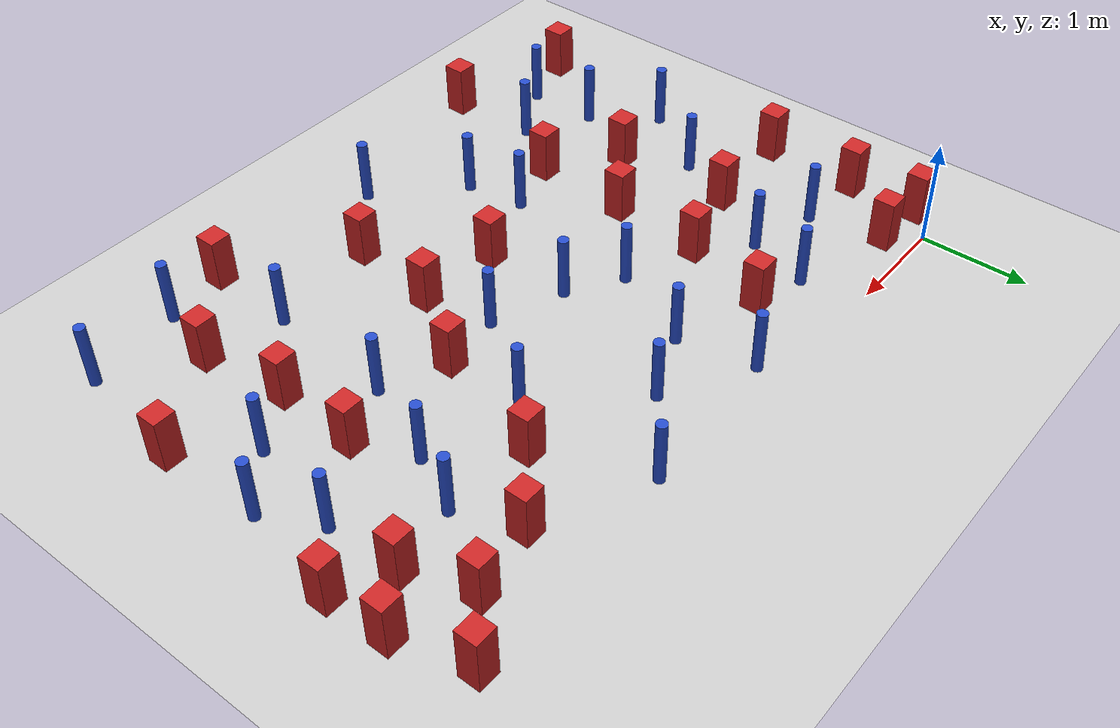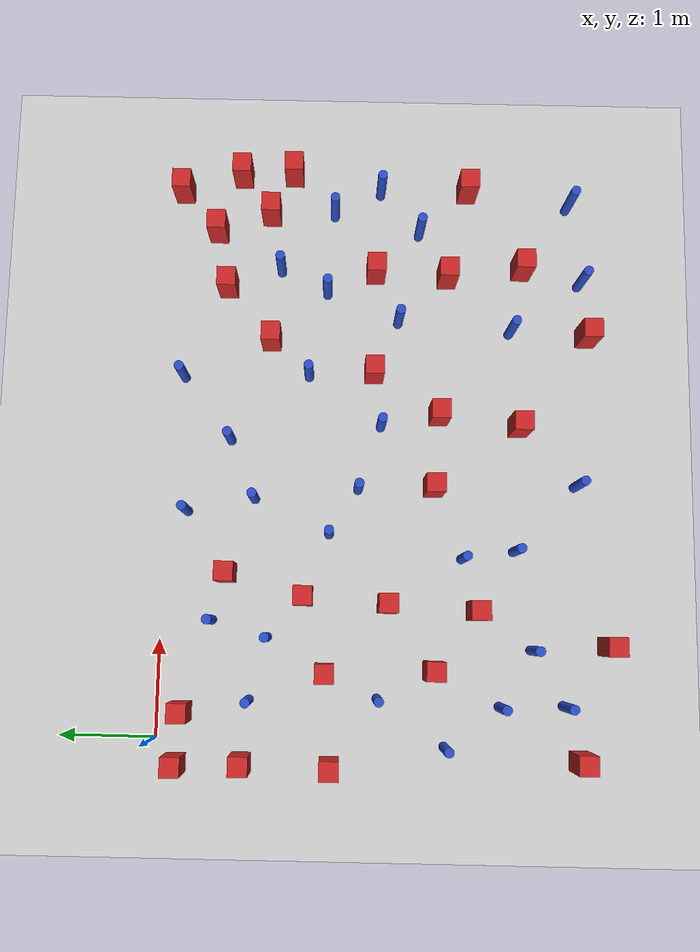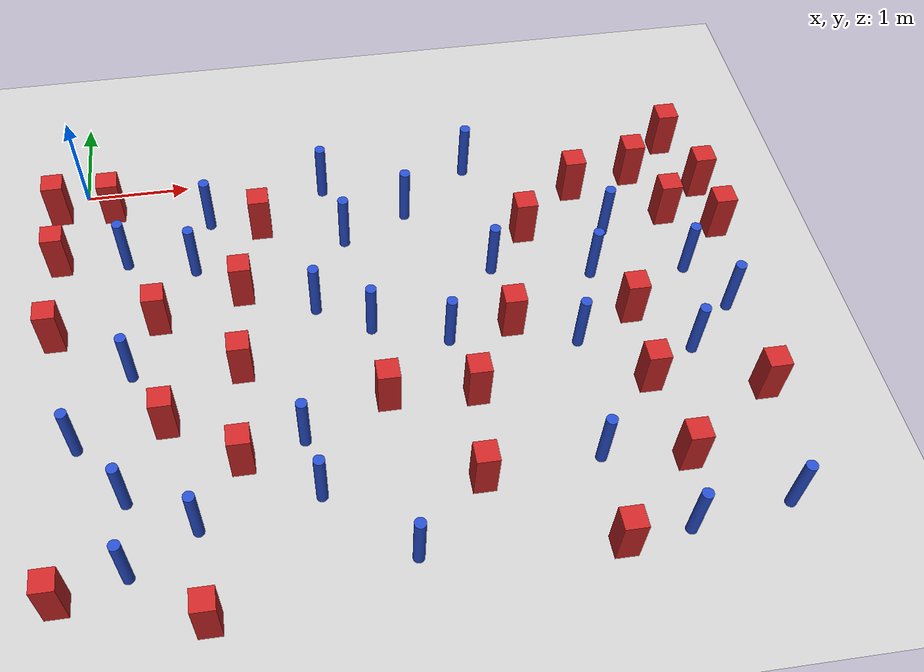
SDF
<sdf version="1.6">
 <world name="default">
  <model name="ground_plane">
   <static>1</static>
   <link name="link">
    <collision name="collision">
     <geometry><plane><normal>0 0 1</normal><size>100 100</size></plane></geometry>
     <surface><friction><ode><mu>100</mu><mu2>50</mu2></ode></friction></surface>
    </collision>
    <visual name="visual">
     <cast_shadows>0</cast_shadows>
     <geometry><plane><normal>0 0 1</normal><size>100 100</size></plane></geometry>
     <material>
      <ambient>1.0 1.0 1.0 1.0</ambient>
      <diffuse>0.8 0.8 0.8 1.0</diffuse>
      <specular>0.01 0.01 0.01 1.000000</specular>
     </material>
    </visual>
   </link>
  </model>
  <model name="pole_obstacle1">
   <static>true</static>
   <pose>4.46261429955 -2.45915719128 -9.47619616065e-06 5.49618799738e-07 2.36310414051e-07 -1.55090534805e-07</pose>
   <link name="link">
    <pose>0 0 0.3 0 -0 0</pose>
    <inertial>
     <mass>1</mass>
     <inertia><ixx>0.145833</ixx><ixy>0</ixy><ixz>0</ixz><iyy>0.145833</iyy><iyz>0</iyz><izz>0.125</izz></inertia>
    </inertial>
    <collision name="collision">
     <geometry><cylinder><radius>0.05</radius><length>.6</length></cylinder></geometry>
    </collision>
    <visual name="visual">
     <geometry><cylinder><radius>0.05</radius><length>.6</length></cylinder></geometry>
     <material>
      <script><name>Gazebo/Blue</name><uri>file://media/materials/scripts/gazebo.material</uri></script>
     </material>
    </visual>
   </link>
  </model>
  <model name="square_post_obstacle2">
   <static>true</static>
   <pose>3.32583595475 -3.76178760653 -6.11067671241e-07 -5.50515727128e-06 -8.79689657224e-07 2.37013304536e-05</pose>
   <link name="link">
    <pose>0 0 0.25 0 -0 0</pose>
    <inertial>
     <mass>100</mass>
     <inertia>
      <ixx>0.166667</ixx>
      <ixy>0</ixy>
      <ixz>0</ixz>
      <iyy>0.166667</iyy>
      <iyz>0</iyz>
      <izz>0.166667</izz>
     </inertia>
    </inertial>
    <collision name="collision"><geometry><box><size>.2 .2 .5</size></box></geometry></collision>
    <visual name="visual">
     <geometry><box><size>.2 .2 .5</size></box></geometry>
     <material>
      <script><name>Gazebo/Red</name><uri>file://media/materials/scripts/gazebo.material</uri></script>
     </material>
    </visual>
   </link>
  </model>
  <model name="square_post_obstacle3">
   <static>true</static>
   <pose>6.1274919712 -1.29283202297 -6.11067671241e-07 -5.50515727128e-06 -8.79689657224e-07 2.37013304536e-05</pose>
   <link name="link">
    <pose>0 0 0.25 0 -0 0</pose>
    <inertial>
     <mass>100</mass>
     <inertia>
      <ixx>0.166667</ixx>
      <ixy>0</ixy>
      <ixz>0</ixz>
      <iyy>0.166667</iyy>
      <iyz>0</iyz>
      <izz>0.166667</izz>
     </inertia>
    </inertial>
    <collision name="collision"><geometry><box><size>.2 .2 .5</size></box></geometry></collision>
    <visual name="visual">
     <geometry><box><size>.2 .2 .5</size></box></geometry>
     <material>
      <script><name>Gazebo/Red</name><uri>file://media/materials/scripts/gazebo.material</uri></script>
     </material>
    </visual>
   </link>
  </model>
  <model name="square_post_obstacle7">
   <static>true</static>
   <pose>5.66309559991 -1.05410015677 -6.11067671241e-07 -5.50515727128e-06 -8.79689657224e-07 2.37013304536e-05</pose>
   <link name="link">
    <pose>0 0 0.25 0 -0 0</pose>
    <inertial>
     <mass>100</mass>
     <inertia>
      <ixx>0.166667</ixx>
      <ixy>0</ixy>
      <ixz>0</ixz>
      <iyy>0.166667</iyy>
      <iyz>0</iyz>
      <izz>0.166667</izz>
     </inertia>
    </inertial>
    <collision name="collision"><geometry><box><size>.2 .2 .5</size></box></geometry></collision>
    <visual name="visual">
     <geometry><box><size>.2 .2 .5</size></box></geometry>
     <material>
      <script><name>Gazebo/Red</name><uri>file://media/materials/scripts/gazebo.material</uri></script>
     </material>
    </visual>
   </link>
  </model>
  <model name="square_post_obstacle12">
   <static>true</static>
   <pose>5.08211980681 -3.79533235804 -6.11067671241e-07 -5.50515727128e-06 -8.79689657224e-07 2.37013304536e-05</pose>
   <link name="link">
    <pose>0 0 0.25 0 -0 0</pose>
    <inertial>
     <mass>100</mass>
     <inertia>
      <ixx>0.166667</ixx>
      <ixy>0</ixy>
      <ixz>0</ixz>
      <iyy>0.166667</iyy>
      <iyz>0</iyz>
      <izz>0.166667</izz>
     </inertia>
    </inertial>
    <collision name="collision"><geometry><box><size>.2 .2 .5</size></box></geometry></collision>
    <visual name="visual">
     <geometry><box><size>.2 .2 .5</size></box></geometry>
     <material>
      <script><name>Gazebo/Red</name><uri>file://media/materials/scripts/gazebo.material</uri></script>
     </material>
    </visual>
   </link>
  </model>
  <model name="pole_obstacle27">
   <static>true</static>
   <pose>5.804888347 -4.30856971568 -9.47619616065e-06 5.49618799737e-07 2.36310414037e-07 -1.55090534814e-07</pose>
   <link name="link">
    <pose>0 0 0.3 0 -0 0</pose>
    <inertial>
     <mass>1</mass>
     <inertia><ixx>0.145833</ixx><ixy>0</ixy><ixz>0</ixz><iyy>0.145833</iyy><iyz>0</iyz><izz>0.125</izz></inertia>
    </inertial>
    <collision name="collision">
     <geometry><cylinder><radius>0.05</radius><length>.6</length></cylinder></geometry>
    </collision>
    <visual name="visual">
     <geometry><cylinder><radius>0.05</radius><length>.6</length></cylinder></geometry>
     <material>
      <script><name>Gazebo/Blue</name><uri>file://media/materials/scripts/gazebo.material</uri></script>
     </material>
    </visual>
   </link>
  </model>
  <model name="pole_obstacle31">
   <static>true</static>
   <pose>5.47156193885 -2.67796141232 -9.47619616065e-06 5.49618799738e-07 2.36310414051e-07 -1.55090534805e-07</pose>
   <link name="link">
    <pose>0 0 0.3 0 -0 0</pose>
    <inertial>
     <mass>1</mass>
     <inertia><ixx>0.145833</ixx><ixy>0</ixy><ixz>0</ixz><iyy>0.145833</iyy><iyz>0</iyz><izz>0.125</izz></inertia>
    </inertial>
    <collision name="collision">
     <geometry><cylinder><radius>0.05</radius><length>.6</length></cylinder></geometry>
    </collision>
    <visual name="visual">
     <geometry><cylinder><radius>0.05</radius><length>.6</length></cylinder></geometry>
     <material>
      <script><name>Gazebo/Blue</name><uri>file://media/materials/scripts/gazebo.material</uri></script>
     </material>
    </visual>
   </link>
  </model>
  <model name="square_post_obstacle25">
   <static>true</static>
   <pose>5.96733448674 -3.19713306478 -6.11067671241e-07 -5.50515727128e-06 -8.79689657224e-07 2.37013304536e-05</pose>
   <link name="link">
    <pose>0 0 0.25 0 -0 0</pose>
    <inertial>
     <mass>100</mass>
     <inertia>
      <ixx>0.166667</ixx>
      <ixy>0</ixy>
      <ixz>0</ixz>
      <iyy>0.166667</iyy>
      <iyz>0</iyz>
      <izz>0.166667</izz>
     </inertia>
    </inertial>
    <collision name="collision"><geometry><box><size>.2 .2 .5</size></box></geometry></collision>
    <visual name="visual">
     <geometry><box><size>.2 .2 .5</size></box></geometry>
     <material>
      <script><name>Gazebo/Red</name><uri>file://media/materials/scripts/gazebo.material</uri></script>
     </material>
    </visual>
   </link>
  </model>
  <model name="pole_obstacle40">
   <static>true</static>
   <pose>0.397886031959 -0.955491700525 -9.47619616065e-06 5.49618799737e-07 2.36310414052e-07 -1.55090534805e-07</pose>
   <link name="link">
    <pose>0 0 0.3 0 -0 0</pose>
    <inertial>
     <mass>1</mass>
     <inertia><ixx>0.145833</ixx><ixy>0</ixy><ixz>0</ixz><iyy>0.145833</iyy><iyz>0</iyz><izz>0.125</izz></inertia>
    </inertial>
    <collision name="collision">
     <geometry><cylinder><radius>0.05</radius><length>.6</length></cylinder></geometry>
    </collision>
    <visual name="visual">
     <geometry><cylinder><radius>0.05</radius><length>.6</length></cylinder></geometry>
     <material>
      <script><name>Gazebo/Blue</name><uri>file://media/materials/scripts/gazebo.material</uri></script>
     </material>
    </visual>
   </link>
  </model>
  <model name="square_post_obstacle34">
   <static>true</static>
   <pose>5.45453740797 -0.474392544749 -6.11067671241e-07 -5.50515727128e-06 -8.79689657224e-07 2.37013304536e-05</pose>
   <link name="link">
    <pose>0 0 0.25 0 -0 0</pose>
    <inertial>
     <mass>100</mass>
     <inertia>
      <ixx>0.166667</ixx>
      <ixy>0</ixy>
      <ixz>0</ixz>
      <iyy>0.166667</iyy>
      <iyz>0</iyz>
      <izz>0.166667</izz>
     </inertia>
    </inertial>
    <collision name="collision"><geometry><box><size>.2 .2 .5</size></box></geometry></collision>
    <visual name="visual">
     <geometry><box><size>.2 .2 .5</size></box></geometry>
     <material>
      <script><name>Gazebo/Red</name><uri>file://media/materials/scripts/gazebo.material</uri></script>
     </material>
    </visual>
   </link>
  </model>
  <model name="square_post_obstacle36">
   <static>true</static>
   <pose>1.70370038667 -0.683230007107 -6.11067671241e-07 -5.50515727128e-06 -8.79689657224e-07 2.37013304536e-05</pose>
   <link name="link">
    <pose>0 0 0.25 0 -0 0</pose>
    <inertial>
     <mass>100</mass>
     <inertia>
      <ixx>0.166667</ixx>
      <ixy>0</ixy>
      <ixz>0</ixz>
      <iyy>0.166667</iyy>
      <iyz>0</iyz>
      <izz>0.166667</izz>
     </inertia>
    </inertial>
    <collision name="collision"><geometry><box><size>.2 .2 .5</size></box></geometry></collision>
    <visual name="visual">
     <geometry><box><size>.2 .2 .5</size></box></geometry>
     <material>
      <script><name>Gazebo/Red</name><uri>file://media/materials/scripts/gazebo.material</uri></script>
     </material>
    </visual>
   </link>
  </model>
  <model name="pole_obstacle49">
   <static>true</static>
   <pose>0.397590269033 -4.21798118655 -9.47619616065e-06 5.49618799737e-07 2.36310414065e-07 -1.55090534796e-07</pose>
   <link name="link">
    <pose>0 0 0.3 0 -0 0</pose>
    <inertial>
     <mass>1</mass>
     <inertia><ixx>0.145833</ixx><ixy>0</ixy><ixz>0</ixz><iyy>0.145833</iyy><iyz>0</iyz><izz>0.125</izz></inertia>
    </inertial>
    <collision name="collision">
     <geometry><cylinder><radius>0.05</radius><length>.6</length></cylinder></geometry>
    </collision>
    <visual name="visual">
     <geometry><cylinder><radius>0.05</radius><length>.6</length></cylinder></geometry>
     <material>
      <script><name>Gazebo/Blue</name><uri>file://media/materials/scripts/gazebo.material</uri></script>
     </material>
    </visual>
   </link>
  </model>
  <model name="pole_obstacle56">
   <static>true</static>
   <pose>2.68932648927 -4.36354143313 -9.47619616065e-06 5.49618799738e-07 2.3631041406e-07 -1.55090534801e-07</pose>
   <link name="link">
    <pose>0 0 0.3 0 -0 0</pose>
    <inertial>
     <mass>1</mass>
     <inertia><ixx>0.145833</ixx><ixy>0</ixy><ixz>0</ixz><iyy>0.145833</iyy><iyz>0</iyz><izz>0.125</izz></inertia>
    </inertial>
    <collision name="collision">
     <geometry><cylinder><radius>0.05</radius><length>.6</length></cylinder></geometry>
    </collision>
    <visual name="visual">
     <geometry><cylinder><radius>0.05</radius><length>.6</length></cylinder></geometry>
     <material>
      <script><name>Gazebo/Blue</name><uri>file://media/materials/scripts/gazebo.material</uri></script>
     </material>
    </visual>
   </link>
  </model>
  <model name="pole_obstacle59">
   <static>true</static>
   <pose>1.04227949544 -1.12605405315 -9.47619616065e-06 5.49618799738e-07 2.36310414068e-07 -1.55090534794e-07</pose>
   <link name="link">
    <pose>0 0 0.3 0 -0 0</pose>
    <inertial>
     <mass>1</mass>
     <inertia><ixx>0.145833</ixx><ixy>0</ixy><ixz>0</ixz><iyy>0.145833</iyy><iyz>0</iyz><izz>0.125</izz></inertia>
    </inertial>
    <collision name="collision">
     <geometry><cylinder><radius>0.05</radius><length>.6</length></cylinder></geometry>
    </collision>
    <visual name="visual">
     <geometry><cylinder><radius>0.05</radius><length>.6</length></cylinder></geometry>
     <material>
      <script><name>Gazebo/Blue</name><uri>file://media/materials/scripts/gazebo.material</uri></script>
     </material>
    </visual>
   </link>
  </model>
  <model name="pole_obstacle72">
   <static>true</static>
   <pose>4.36626279711 -3.67115280697 -9.47619616065e-06 5.49618799738e-07 2.36310414051e-07 -1.55090534805e-07</pose>
   <link name="link">
    <pose>0 0 0.3 0 -0 0</pose>
    <inertial>
     <mass>1</mass>
     <inertia><ixx>0.145833</ixx><ixy>0</ixy><ixz>0</ixz><iyy>0.145833</iyy><iyz>0</iyz><izz>0.125</izz></inertia>
    </inertial>
    <collision name="collision">
     <geometry><cylinder><radius>0.05</radius><length>.6</length></cylinder></geometry>
    </collision>
    <visual name="visual">
     <geometry><cylinder><radius>0.05</radius><length>.6</length></cylinder></geometry>
     <material>
      <script><name>Gazebo/Blue</name><uri>file://media/materials/scripts/gazebo.material</uri></script>
     </material>
    </visual>
   </link>
  </model>
  <model name="square_post_obstacle64">
   <static>true</static>
   <pose>5.01370096688 -2.20534150453 -6.11067671241e-07 -5.50515727128e-06 -8.79689657224e-07 2.37013304536e-05</pose>
   <link name="link">
    <pose>0 0 0.25 0 -0 0</pose>
    <inertial>
     <mass>100</mass>
     <inertia>
      <ixx>0.166667</ixx>
      <ixy>0</ixy>
      <ixz>0</ixz>
      <iyy>0.166667</iyy>
      <iyz>0</iyz>
      <izz>0.166667</izz>
     </inertia>
    </inertial>
    <collision name="collision"><geometry><box><size>.2 .2 .5</size></box></geometry></collision>
    <visual name="visual">
     <geometry><box><size>.2 .2 .5</size></box></geometry>
     <material>
      <script><name>Gazebo/Red</name><uri>file://media/materials/scripts/gazebo.material</uri></script>
     </material>
    </visual>
   </link>
  </model>
  <model name="pole_obstacle78">
   <static>true</static>
   <pose>2.61732531736 -2.05316407283 -9.47619616065e-06 5.49618799737e-07 2.36310414051e-07 -1.55090534807e-07</pose>
   <link name="link">
    <pose>0 0 0.3 0 -0 0</pose>
    <inertial>
     <mass>1</mass>
     <inertia><ixx>0.145833</ixx><ixy>0</ixy><ixz>0</ixz><iyy>0.145833</iyy><iyz>0</iyz><izz>0.125</izz></inertia>
    </inertial>
    <collision name="collision">
     <geometry><cylinder><radius>0.05</radius><length>.6</length></cylinder></geometry>
    </collision>
    <visual name="visual">
     <geometry><cylinder><radius>0.05</radius><length>.6</length></cylinder></geometry>
     <material>
      <script><name>Gazebo/Blue</name><uri>file://media/materials/scripts/gazebo.material</uri></script>
     </material>
    </visual>
   </link>
  </model>
  <model name="pole_obstacle79">
   <static>true</static>
   <pose>0.961079584514 -3.88609216402 -9.47619616065e-06 5.49618799737e-07 2.36310414062e-07 -1.550905348e-07</pose>
   <link name="link">
    <pose>0 0 0.3 0 -0 0</pose>
    <inertial>
     <mass>1</mass>
     <inertia><ixx>0.145833</ixx><ixy>0</ixy><ixz>0</ixz><iyy>0.145833</iyy><iyz>0</iyz><izz>0.125</izz></inertia>
    </inertial>
    <collision name="collision">
     <geometry><cylinder><radius>0.05</radius><length>.6</length></cylinder></geometry>
    </collision>
    <visual name="visual">
     <geometry><cylinder><radius>0.05</radius><length>.6</length></cylinder></geometry>
     <material>
      <script><name>Gazebo/Blue</name><uri>file://media/materials/scripts/gazebo.material</uri></script>
     </material>
    </visual>
   </link>
  </model>
  <model name="square_post_obstacle74">
   <static>true</static>
   <pose>1.41190469269 -2.37467474319 -6.11067671241e-07 -5.50515727128e-06 -8.79689657224e-07 2.37013304536e-05</pose>
   <link name="link">
    <pose>0 0 0.25 0 -0 0</pose>
    <inertial>
     <mass>100</mass>
     <inertia>
      <ixx>0.166667</ixx>
      <ixy>0</ixy>
      <ixz>0</ixz>
      <iyy>0.166667</iyy>
      <iyz>0</iyz>
      <izz>0.166667</izz>
     </inertia>
    </inertial>
    <collision name="collision"><geometry><box><size>.2 .2 .5</size></box></geometry></collision>
    <visual name="visual">
     <geometry><box><size>.2 .2 .5</size></box></geometry>
     <material>
      <script><name>Gazebo/Red</name><uri>file://media/materials/scripts/gazebo.material</uri></script>
     </material>
    </visual>
   </link>
  </model>
  <model name="square_post_obstacle79">
   <static>true</static>
   <pose>4.82236053378 -0.603527897927 -6.11067671241e-07 -5.50515727128e-06 -8.79689657224e-07 2.37013304536e-05</pose>
   <link name="link">
    <pose>0 0 0.25 0 -0 0</pose>
    <inertial>
     <mass>100</mass>
     <inertia>
      <ixx>0.166667</ixx>
      <ixy>0</ixy>
      <ixz>0</ixz>
      <iyy>0.166667</iyy>
      <iyz>0</iyz>
      <izz>0.166667</izz>
     </inertia>
    </inertial>
    <collision name="collision"><geometry><box><size>.2 .2 .5</size></box></geometry></collision>
    <visual name="visual">
     <geometry><box><size>.2 .2 .5</size></box></geometry>
     <material>
      <script><name>Gazebo/Red</name><uri>file://media/materials/scripts/gazebo.material</uri></script>
     </material>
    </visual>
   </link>
  </model>
  <model name="pole_obstacle95">
   <static>true</static>
   <pose>3.84602743714 -1.50425713344 -9.47619616065e-06 5.49618799737e-07 2.36310414072e-07 -1.55090534793e-07</pose>
   <link name="link">
    <pose>0 0 0.3 0 -0 0</pose>
    <inertial>
     <mass>1</mass>
     <inertia><ixx>0.145833</ixx><ixy>0</ixy><ixz>0</ixz><iyy>0.145833</iyy><iyz>0</iyz><izz>0.125</izz></inertia>
    </inertial>
    <collision name="collision">
     <geometry><cylinder><radius>0.05</radius><length>.6</length></cylinder></geometry>
    </collision>
    <visual name="visual">
     <geometry><cylinder><radius>0.05</radius><length>.6</length></cylinder></geometry>
     <material>
      <script><name>Gazebo/Blue</name><uri>file://media/materials/scripts/gazebo.material</uri></script>
     </material>
    </visual>
   </link>
  </model>
  <model name="square_post_obstacle92">
   <static>true</static>
   <pose>0.689483337582 -1.73162402149 -6.11067671241e-07 -5.50515727128e-06 -8.79689657224e-07 2.37013304536e-05</pose>
   <link name="link">
    <pose>0 0 0.25 0 -0 0</pose>
    <inertial>
     <mass>100</mass>
     <inertia>
      <ixx>0.166667</ixx>
      <ixy>0</ixy>
      <ixz>0</ixz>
      <iyy>0.166667</iyy>
      <iyz>0</iyz>
      <izz>0.166667</izz>
     </inertia>
    </inertial>
    <collision name="collision"><geometry><box><size>.2 .2 .5</size></box></geometry></collision>
    <visual name="visual">
     <geometry><box><size>.2 .2 .5</size></box></geometry>
     <material>
      <script><name>Gazebo/Red</name><uri>file://media/materials/scripts/gazebo.material</uri></script>
     </material>
    </visual>
   </link>
  </model>
  <model name="pole_obstacle101">
   <static>true</static>
   <pose>4.92042134101 -4.42936719796 -9.47619616065e-06 5.49618799737e-07 2.36310414037e-07 -1.55090534814e-07</pose>
   <link name="link">
    <pose>0 0 0.3 0 -0 0</pose>
    <inertial>
     <mass>1</mass>
     <inertia><ixx>0.145833</ixx><ixy>0</ixy><ixz>0</ixz><iyy>0.145833</iyy><iyz>0</iyz><izz>0.125</izz></inertia>
    </inertial>
    <collision name="collision">
     <geometry><cylinder><radius>0.05</radius><length>.6</length></cylinder></geometry>
    </collision>
    <visual name="visual">
     <geometry><cylinder><radius>0.05</radius><length>.6</length></cylinder></geometry>
     <material>
      <script><name>Gazebo/Blue</name><uri>file://media/materials/scripts/gazebo.material</uri></script>
     </material>
    </visual>
   </link>
  </model>
  <model name="pole_obstacle103">
   <static>true</static>
   <pose>5.02381283802 -1.17788703611 -9.47619616065e-06 5.49618799738e-07 2.36310414071e-07 -1.55090534796e-07</pose>
   <link name="link">
    <pose>0 0 0.3 0 -0 0</pose>
    <inertial>
     <mass>1</mass>
     <inertia><ixx>0.145833</ixx><ixy>0</ixy><ixz>0</ixz><iyy>0.145833</iyy><iyz>0</iyz><izz>0.125</izz></inertia>
    </inertial>
    <collision name="collision">
     <geometry><cylinder><radius>0.05</radius><length>.6</length></cylinder></geometry>
    </collision>
    <visual name="visual">
     <geometry><cylinder><radius>0.05</radius><length>.6</length></cylinder></geometry>
     <material>
      <script><name>Gazebo/Blue</name><uri>file://media/materials/scripts/gazebo.material</uri></script>
     </material>
    </visual>
   </link>
  </model>
  <model name="square_post_obstacle102">
   <static>true</static>
   <pose>-0.258247819766 -1.79718944667 -6.11067671241e-07 -5.50515727128e-06 -8.79689657224e-07 2.37013304536e-05</pose>
   <link name="link">
    <pose>0 0 0.25 0 -0 0</pose>
    <inertial>
     <mass>100</mass>
     <inertia>
      <ixx>0.166667</ixx>
      <ixy>0</ixy>
      <ixz>0</ixz>
      <iyy>0.166667</iyy>
      <iyz>0</iyz>
      <izz>0.166667</izz>
     </inertia>
    </inertial>
    <collision name="collision"><geometry><box><size>.2 .2 .5</size></box></geometry></collision>
    <visual name="visual">
     <geometry><box><size>.2 .2 .5</size></box></geometry>
     <material>
      <script><name>Gazebo/Red</name><uri>file://media/materials/scripts/gazebo.material</uri></script>
     </material>
    </visual>
   </link>
  </model>
  <model name="pole_obstacle110">
   <static>true</static>
   <pose>3.12587356389 -0.684348614605 -9.47619616065e-06 5.49618799738e-07 2.36310414075e-07 -1.55090534793e-07</pose>
   <link name="link">
    <pose>0 0 0.3 0 -0 0</pose>
    <inertial>
     <mass>1</mass>
     <inertia><ixx>0.145833</ixx><ixy>0</ixy><ixz>0</ixz><iyy>0.145833</iyy><iyz>0</iyz><izz>0.125</izz></inertia>
    </inertial>
    <collision name="collision">
     <geometry><cylinder><radius>0.05</radius><length>.6</length></cylinder></geometry>
    </collision>
    <visual name="visual">
     <geometry><cylinder><radius>0.05</radius><length>.6</length></cylinder></geometry>
     <material>
      <script><name>Gazebo/Blue</name><uri>file://media/materials/scripts/gazebo.material</uri></script>
     </material>
    </visual>
   </link>
  </model>
  <model name="square_post_obstacle103">
   <static>true</static>
   <pose>4.33535832028 -4.49820486926 -6.11067671241e-07 -5.50515727128e-06 -8.79689657224e-07 2.37013304536e-05</pose>
   <link name="link">
    <pose>0 0 0.25 0 -0 0</pose>
    <inertial>
     <mass>100</mass>
     <inertia>
      <ixx>0.166667</ixx>
      <ixy>0</ixy>
      <ixz>0</ixz>
      <iyy>0.166667</iyy>
      <iyz>0</iyz>
      <izz>0.166667</izz>
     </inertia>
    </inertial>
    <collision name="collision"><geometry><box><size>.2 .2 .5</size></box></geometry></collision>
    <visual name="visual">
     <geometry><box><size>.2 .2 .5</size></box></geometry>
     <material>
      <script><name>Gazebo/Red</name><uri>file://media/materials/scripts/gazebo.material</uri></script>
     </material>
    </visual>
   </link>
  </model>
  <model name="square_post_obstacle108">
   <static>true</static>
   <pose>1.35773399485 -3.31538655183 -6.11067671241e-07 -5.50515727128e-06 -8.79689657224e-07 2.37013304536e-05</pose>
   <link name="link">
    <pose>0 0 0.25 0 -0 0</pose>
    <inertial>
     <mass>100</mass>
     <inertia>
      <ixx>0.166667</ixx>
      <ixy>0</ixy>
      <ixz>0</ixz>
      <iyy>0.166667</iyy>
      <iyz>0</iyz>
      <izz>0.166667</izz>
     </inertia>
    </inertial>
    <collision name="collision"><geometry><box><size>.2 .2 .5</size></box></geometry></collision>
    <visual name="visual">
     <geometry><box><size>.2 .2 .5</size></box></geometry>
     <material>
      <script><name>Gazebo/Red</name><uri>file://media/materials/scripts/gazebo.material</uri></script>
     </material>
    </visual>
   </link>
  </model>
  <model name="pole_obstacle114">
   <static>true</static>
   <pose>-0.0388327094771 -2.9800105891 -9.4761961606e-06 5.49618799729e-07 2.36310413995e-07 -1.55090534826e-07</pose>
   <link name="link">
    <pose>0 0 0.3 0 -0 0</pose>
    <inertial>
     <mass>1</mass>
     <inertia><ixx>0.145833</ixx><ixy>0</ixy><ixz>0</ixz><iyy>0.145833</iyy><iyz>0</iyz><izz>0.125</izz></inertia>
    </inertial>
    <collision name="collision">
     <geometry><cylinder><radius>0.05</radius><length>.6</length></cylinder></geometry>
    </collision>
    <visual name="visual">
     <geometry><cylinder><radius>0.05</radius><length>.6</length></cylinder></geometry>
     <material>
      <script><name>Gazebo/Blue</name><uri>file://media/materials/scripts/gazebo.material</uri></script>
     </material>
    </visual>
   </link>
  </model>
  <model name="pole_obstacle127">
   <static>true</static>
   <pose>5.67949767151 -1.74758893099 -9.47619616065e-06 5.49618799738e-07 2.36310414071e-07 -1.55090534796e-07</pose>
   <link name="link">
    <pose>0 0 0.3 0 -0 0</pose>
    <inertial>
     <mass>1</mass>
     <inertia><ixx>0.145833</ixx><ixy>0</ixy><ixz>0</ixz><iyy>0.145833</iyy><iyz>0</iyz><izz>0.125</izz></inertia>
    </inertial>
    <collision name="collision">
     <geometry><cylinder><radius>0.05</radius><length>.6</length></cylinder></geometry>
    </collision>
    <visual name="visual">
     <geometry><cylinder><radius>0.05</radius><length>.6</length></cylinder></geometry>
     <material>
      <script><name>Gazebo/Blue</name><uri>file://media/materials/scripts/gazebo.material</uri></script>
     </material>
    </visual>
   </link>
  </model>
  <model name="square_post_obstacle126">
   <static>true</static>
   <pose>-0.231530715062 -0.893980032002 -6.11067671241e-07 -5.50515727128e-06 -8.79689657224e-07 2.37013304536e-05</pose>
   <link name="link">
    <pose>0 0 0.25 0 -0 0</pose>
    <inertial>
     <mass>100</mass>
     <inertia>
      <ixx>0.166667</ixx>
      <ixy>0</ixy>
      <ixz>0</ixz>
      <iyy>0.166667</iyy>
      <iyz>0</iyz>
      <izz>0.166667</izz>
     </inertia>
    </inertial>
    <collision name="collision"><geometry><box><size>.2 .2 .5</size></box></geometry></collision>
    <visual name="visual">
     <geometry><box><size>.2 .2 .5</size></box></geometry>
     <material>
      <script><name>Gazebo/Red</name><uri>file://media/materials/scripts/gazebo.material</uri></script>
     </material>
    </visual>
   </link>
  </model>
  <model name="pole_obstacle132">
   <static>true</static>
   <pose>2.3514817575 -0.245495715279 -9.4761961606e-06 5.49618799729e-07 2.36310414002e-07 -1.55090534824e-07</pose>
   <link name="link">
    <pose>0 0 0.3 0 -0 0</pose>
    <inertial>
     <mass>1</mass>
     <inertia><ixx>0.145833</ixx><ixy>0</ixy><ixz>0</ixz><iyy>0.145833</iyy><iyz>0</iyz><izz>0.125</izz></inertia>
    </inertial>
    <collision name="collision">
     <geometry><cylinder><radius>0.05</radius><length>.6</length></cylinder></geometry>
    </collision>
    <visual name="visual">
     <geometry><cylinder><radius>0.05</radius><length>.6</length></cylinder></geometry>
     <material>
      <script><name>Gazebo/Blue</name><uri>file://media/materials/scripts/gazebo.material</uri></script>
     </material>
    </visual>
   </link>
  </model>
  <model name="square_post_obstacle130">
   <static>true</static>
   <pose>2.65591770952 -2.85078131272 -6.11067671241e-07 -5.50515727128e-06 -8.79689657224e-07 2.37013304536e-05</pose>
   <link name="link">
    <pose>0 0 0.25 0 -0 0</pose>
    <inertial>
     <mass>100</mass>
     <inertia>
      <ixx>0.166667</ixx>
      <ixy>0</ixy>
      <ixz>0</ixz>
      <iyy>0.166667</iyy>
      <iyz>0</iyz>
      <izz>0.166667</izz>
     </inertia>
    </inertial>
    <collision name="collision"><geometry><box><size>.2 .2 .5</size></box></geometry></collision>
    <visual name="visual">
     <geometry><box><size>.2 .2 .5</size></box></geometry>
     <material>
      <script><name>Gazebo/Red</name><uri>file://media/materials/scripts/gazebo.material</uri></script>
     </material>
    </visual>
   </link>
  </model>
  <model name="square_post_obstacle138">
   <static>true</static>
   <pose>-0.249797077955 -0.219796077133 -6.11067671241e-07 -5.50515727128e-06 -8.79689657224e-07 2.37013304536e-05</pose>
   <link name="link">
    <pose>0 0 0.25 0 -0 0</pose>
    <inertial>
     <mass>100</mass>
     <inertia>
      <ixx>0.166667</ixx>
      <ixy>0</ixy>
      <ixz>0</ixz>
      <iyy>0.166667</iyy>
      <iyz>0</iyz>
      <izz>0.166667</izz>
     </inertia>
    </inertial>
    <collision name="collision"><geometry><box><size>.2 .2 .5</size></box></geometry></collision>
    <visual name="visual">
     <geometry><box><size>.2 .2 .5</size></box></geometry>
     <material>
      <script><name>Gazebo/Red</name><uri>file://media/materials/scripts/gazebo.material</uri></script>
     </material>
    </visual>
   </link>
  </model>
  <model name="square_post_obstacle139">
   <static>true</static>
   <pose>0.273951395997 -0.263592387525 -6.11067671241e-07 -5.50515727128e-06 -8.79689657224e-07 2.37013304536e-05</pose>
   <link name="link">
    <pose>0 0 0.25 0 -0 0</pose>
    <inertial>
     <mass>100</mass>
     <inertia>
      <ixx>0.166667</ixx>
      <ixy>0</ixy>
      <ixz>0</ixz>
      <iyy>0.166667</iyy>
      <iyz>0</iyz>
      <izz>0.166667</izz>
     </inertia>
    </inertial>
    <collision name="collision"><geometry><box><size>.2 .2 .5</size></box></geometry></collision>
    <visual name="visual">
     <geometry><box><size>.2 .2 .5</size></box></geometry>
     <material>
      <script><name>Gazebo/Red</name><uri>file://media/materials/scripts/gazebo.material</uri></script>
     </material>
    </visual>
   </link>
  </model>
  <model name="pole_obstacle143">
   <static>true</static>
   <pose>2.1338436355 -1.75308837999 -9.47619616065e-06 5.49618799737e-07 2.36310414072e-07 -1.55090534793e-07</pose>
   <link name="link">
    <pose>0 0 0.3 0 -0 0</pose>
    <inertial>
     <mass>1</mass>
     <inertia><ixx>0.145833</ixx><ixy>0</ixy><ixz>0</ixz><iyy>0.145833</iyy><iyz>0</iyz><izz>0.125</izz></inertia>
    </inertial>
    <collision name="collision">
     <geometry><cylinder><radius>0.05</radius><length>.6</length></cylinder></geometry>
    </collision>
    <visual name="visual">
     <geometry><cylinder><radius>0.05</radius><length>.6</length></cylinder></geometry>
     <material>
      <script><name>Gazebo/Blue</name><uri>file://media/materials/scripts/gazebo.material</uri></script>
     </material>
    </visual>
   </link>
  </model>
  <model name="pole_obstacle158">
   <static>true</static>
   <pose>0.433438067935 -2.28092410504 -9.47619616065e-06 5.49618799738e-07 2.36310414065e-07 -1.55090534798e-07</pose>
   <link name="link">
    <pose>0 0 0.3 0 -0 0</pose>
    <inertial>
     <mass>1</mass>
     <inertia><ixx>0.145833</ixx><ixy>0</ixy><ixz>0</ixz><iyy>0.145833</iyy><iyz>0</iyz><izz>0.125</izz></inertia>
    </inertial>
    <collision name="collision">
     <geometry><cylinder><radius>0.05</radius><length>.6</length></cylinder></geometry>
    </collision>
    <visual name="visual">
     <geometry><cylinder><radius>0.05</radius><length>.6</length></cylinder></geometry>
     <material>
      <script><name>Gazebo/Blue</name><uri>file://media/materials/scripts/gazebo.material</uri></script>
     </material>
    </visual>
   </link>
  </model>
  <model name="pole_obstacle161">
   <static>true</static>
   <pose>2.49548282415 -0.955729177439 -9.47619616065e-06 5.49618799737e-07 2.36310414076e-07 -1.55090534793e-07</pose>
   <link name="link">
    <pose>0 0 0.3 0 -0 0</pose>
    <inertial>
     <mass>1</mass>
     <inertia><ixx>0.145833</ixx><ixy>0</ixy><ixz>0</ixz><iyy>0.145833</iyy><iyz>0</iyz><izz>0.125</izz></inertia>
    </inertial>
    <collision name="collision">
     <geometry><cylinder><radius>0.05</radius><length>.6</length></cylinder></geometry>
    </collision>
    <visual name="visual">
     <geometry><cylinder><radius>0.05</radius><length>.6</length></cylinder></geometry>
     <material>
      <script><name>Gazebo/Blue</name><uri>file://media/materials/scripts/gazebo.material</uri></script>
     </material>
    </visual>
   </link>
  </model>
  <model name="square_post_obstacle158">
   <static>true</static>
   <pose>3.88903372133 -2.20085603692 -6.11067671241e-07 -5.50515727128e-06 -8.79689657224e-07 2.37013304536e-05</pose>
   <link name="link">
    <pose>0 0 0.25 0 -0 0</pose>
    <inertial>
     <mass>100</mass>
     <inertia>
      <ixx>0.166667</ixx>
      <ixy>0</ixy>
      <ixz>0</ixz>
      <iyy>0.166667</iyy>
      <iyz>0</iyz>
      <izz>0.166667</izz>
     </inertia>
    </inertial>
    <collision name="collision"><geometry><box><size>.2 .2 .5</size></box></geometry></collision>
    <visual name="visual">
     <geometry><box><size>.2 .2 .5</size></box></geometry>
     <material>
      <script><name>Gazebo/Red</name><uri>file://media/materials/scripts/gazebo.material</uri></script>
     </material>
    </visual>
   </link>
  </model>
  <model name="pole_obstacle167">
   <static>true</static>
   <pose>5.94039386041 -2.25028092597 -9.47619616065e-06 5.49618799738e-07 2.36310414051e-07 -1.55090534805e-07</pose>
   <link name="link">
    <pose>0 0 0.3 0 -0 0</pose>
    <inertial>
     <mass>1</mass>
     <inertia><ixx>0.145833</ixx><ixy>0</ixy><ixz>0</ixz><iyy>0.145833</iyy><iyz>0</iyz><izz>0.125</izz></inertia>
    </inertial>
    <collision name="collision">
     <geometry><cylinder><radius>0.05</radius><length>.6</length></cylinder></geometry>
    </collision>
    <visual name="visual">
     <geometry><cylinder><radius>0.05</radius><length>.6</length></cylinder></geometry>
     <material>
      <script><name>Gazebo/Blue</name><uri>file://media/materials/scripts/gazebo.material</uri></script>
     </material>
    </visual>
   </link>
  </model>
  <model name="pole_obstacle168">
   <static>true</static>
   <pose>1.21042214382 -0.543325930477 -9.47619616065e-06 5.49618799737e-07 2.3631041406e-07 -1.55090534801e-07</pose>
   <link name="link">
    <pose>0 0 0.3 0 -0 0</pose>
    <inertial>
     <mass>1</mass>
     <inertia><ixx>0.145833</ixx><ixy>0</ixy><ixz>0</ixz><iyy>0.145833</iyy><iyz>0</iyz><izz>0.125</izz></inertia>
    </inertial>
    <collision name="collision">
     <geometry><cylinder><radius>0.05</radius><length>.6</length></cylinder></geometry>
    </collision>
    <visual name="visual">
     <geometry><cylinder><radius>0.05</radius><length>.6</length></cylinder></geometry>
     <material>
      <script><name>Gazebo/Blue</name><uri>file://media/materials/scripts/gazebo.material</uri></script>
     </material>
    </visual>
   </link>
  </model>
  <model name="square_post_obstacle173">
   <static>true</static>
   <pose>5.91182968081 -0.0839038143956 -6.11067671241e-07 -5.50515727128e-06 -8.79689657224e-07 2.37013304536e-05</pose>
   <link name="link">
    <pose>0 0 0.25 0 -0 0</pose>
    <inertial>
     <mass>100</mass>
     <inertia>
      <ixx>0.166667</ixx>
      <ixy>0</ixy>
      <ixz>0</ixz>
      <iyy>0.166667</iyy>
      <iyz>0</iyz>
      <izz>0.166667</izz>
     </inertia>
    </inertial>
    <collision name="collision"><geometry><box><size>.2 .2 .5</size></box></geometry></collision>
    <visual name="visual">
     <geometry><box><size>.2 .2 .5</size></box></geometry>
     <material>
      <script><name>Gazebo/Red</name><uri>file://media/materials/scripts/gazebo.material</uri></script>
     </material>
    </visual>
   </link>
  </model>
  <model name="square_post_obstacle177">
   <static>true</static>
   <pose>4.2315361684 -1.09140409425 -6.11067671241e-07 -5.50515727128e-06 -8.79689657224e-07 2.37013304536e-05</pose>
   <link name="link">
    <pose>0 0 0.25 0 -0 0</pose>
    <inertial>
     <mass>100</mass>
     <inertia>
      <ixx>0.166667</ixx>
      <ixy>0</ixy>
      <ixz>0</ixz>
      <iyy>0.166667</iyy>
      <iyz>0</iyz>
      <izz>0.166667</izz>
     </inertia>
    </inertial>
    <collision name="collision"><geometry><box><size>.2 .2 .5</size></box></geometry></collision>
    <visual name="visual">
     <geometry><box><size>.2 .2 .5</size></box></geometry>
     <material>
      <script><name>Gazebo/Red</name><uri>file://media/materials/scripts/gazebo.material</uri></script>
     </material>
    </visual>
   </link>
  </model>
  <model name="pole_obstacle182">
   <static>true</static>
   <pose>0.377113523026 -3.5523274535 -9.47619616065e-06 5.49618799738e-07 2.36310414065e-07 -1.55090534798e-07</pose>
   <link name="link">
    <pose>0 0 0.3 0 -0 0</pose>
    <inertial>
     <mass>1</mass>
     <inertia><ixx>0.145833</ixx><ixy>0</ixy><ixz>0</ixz><iyy>0.145833</iyy><iyz>0</iyz><izz>0.125</izz></inertia>
    </inertial>
    <collision name="collision">
     <geometry><cylinder><radius>0.05</radius><length>.6</length></cylinder></geometry>
    </collision>
    <visual name="visual">
     <geometry><cylinder><radius>0.05</radius><length>.6</length></cylinder></geometry>
     <material>
      <script><name>Gazebo/Blue</name><uri>file://media/materials/scripts/gazebo.material</uri></script>
     </material>
    </visual>
   </link>
  </model>
  <model name="square_post_obstacle187">
   <static>true</static>
   <pose>4.9751498699 -2.98199846252 -6.11067671241e-07 -5.50515727128e-06 -8.79689657224e-07 2.37013304536e-05</pose>
   <link name="link">
    <pose>0 0 0.25 0 -0 0</pose>
    <inertial>
     <mass>100</mass>
     <inertia>
      <ixx>0.166667</ixx>
      <ixy>0</ixy>
      <ixz>0</ixz>
      <iyy>0.166667</iyy>
      <iyz>0</iyz>
      <izz>0.166667</izz>
     </inertia>
    </inertial>
    <collision name="collision"><geometry><box><size>.2 .2 .5</size></box></geometry></collision>
    <visual name="visual">
     <geometry><box><size>.2 .2 .5</size></box></geometry>
     <material>
      <script><name>Gazebo/Red</name><uri>file://media/materials/scripts/gazebo.material</uri></script>
     </material>
    </visual>
   </link>
  </model>
  <model name="square_post_obstacle203">
   <static>true</static>
   <pose>0.734704267291 -2.86054911716 -6.11067671241e-07 -5.50515727128e-06 -8.79689657224e-07 2.37013304536e-05</pose>
   <link name="link">
    <pose>0 0 0.25 0 -0 0</pose>
    <inertial>
     <mass>100</mass>
     <inertia>
      <ixx>0.166667</ixx>
      <ixy>0</ixy>
      <ixz>0</ixz>
      <iyy>0.166667</iyy>
      <iyz>0</iyz>
      <izz>0.166667</izz>
     </inertia>
    </inertial>
    <collision name="collision"><geometry><box><size>.2 .2 .5</size></box></geometry></collision>
    <visual name="visual">
     <geometry><box><size>.2 .2 .5</size></box></geometry>
     <material>
      <script><name>Gazebo/Red</name><uri>file://media/materials/scripts/gazebo.material</uri></script>
     </material>
    </visual>
   </link>
  </model>
  <model name="pole_obstacle194">
   <static>true</static>
   <pose>1.89812830117 -3.15896116484 -9.47619616065e-06 5.49618799737e-07 2.36310414062e-07 -1.55090534798e-07</pose>
   <link name="link">
    <pose>0 0 0.3 0 -0 0</pose>
    <inertial>
     <mass>1</mass>
     <inertia><ixx>0.145833</ixx><ixy>0</ixy><ixz>0</ixz><iyy>0.145833</iyy><iyz>0</iyz><izz>0.125</izz></inertia>
    </inertial>
    <collision name="collision">
     <geometry><cylinder><radius>0.05</radius><length>.6</length></cylinder></geometry>
    </collision>
    <visual name="visual">
     <geometry><cylinder><radius>0.05</radius><length>.6</length></cylinder></geometry>
     <material>
      <script><name>Gazebo/Blue</name><uri>file://media/materials/scripts/gazebo.material</uri></script>
     </material>
    </visual>
   </link>
  </model>
  <model name="pole_obstacle195">
   <static>true</static>
   <pose>3.30419735053 -2.284811539 -9.47619616065e-06 5.49618799737e-07 2.36310414051e-07 -1.55090534807e-07</pose>
   <link name="link">
    <pose>0 0 0.3 0 -0 0</pose>
    <inertial>
     <mass>1</mass>
     <inertia><ixx>0.145833</ixx><ixy>0</ixy><ixz>0</ixz><iyy>0.145833</iyy><iyz>0</iyz><izz>0.125</izz></inertia>
    </inertial>
    <collision name="collision">
     <geometry><cylinder><radius>0.05</radius><length>.6</length></cylinder></geometry>
    </collision>
    <visual name="visual">
     <geometry><cylinder><radius>0.05</radius><length>.6</length></cylinder></geometry>
     <material>
      <script><name>Gazebo/Blue</name><uri>file://media/materials/scripts/gazebo.material</uri></script>
     </material>
    </visual>
   </link>
  </model>
  <model name="pole_obstacle206">
   <static>true</static>
   <pose>3.80987107077 -0.159270651457 -9.47619616065e-06 5.49618799738e-07 2.36310414078e-07 -1.55090534791e-07</pose>
   <link name="link">
    <pose>0 0 0.3 0 -0 0</pose>
    <inertial>
     <mass>1</mass>
     <inertia><ixx>0.145833</ixx><ixy>0</ixy><ixz>0</ixz><iyy>0.145833</iyy><iyz>0</iyz><izz>0.125</izz></inertia>
    </inertial>
    <collision name="collision">
     <geometry><cylinder><radius>0.05</radius><length>.6</length></cylinder></geometry>
    </collision>
    <visual name="visual">
     <geometry><cylinder><radius>0.05</radius><length>.6</length></cylinder></geometry>
     <material>
      <script><name>Gazebo/Blue</name><uri>file://media/materials/scripts/gazebo.material</uri></script>
     </material>
    </visual>
   </link>
  </model>
  <model name="pole_obstacle209">
   <static>true</static>
   <pose>4.77822017556 -1.68434081269 -9.47619616065e-06 5.49618799738e-07 2.36310414071e-07 -1.55090534796e-07</pose>
   <link name="link">
    <pose>0 0 0.3 0 -0 0</pose>
    <inertial>
     <mass>1</mass>
     <inertia><ixx>0.145833</ixx><ixy>0</ixy><ixz>0</ixz><iyy>0.145833</iyy><iyz>0</iyz><izz>0.125</izz></inertia>
    </inertial>
    <collision name="collision">
     <geometry><cylinder><radius>0.05</radius><length>.6</length></cylinder></geometry>
    </collision>
    <visual name="visual">
     <geometry><cylinder><radius>0.05</radius><length>.6</length></cylinder></geometry>
     <material>
      <script><name>Gazebo/Blue</name><uri>file://media/materials/scripts/gazebo.material</uri></script>
     </material>
    </visual>
   </link>
  </model>
  <model name="square_post_obstacle209">
   <static>true</static>
   <pose>3.43559872529 -2.9029077384 -6.11067671241e-07 -5.50515727128e-06 -8.79689657224e-07 2.37013304536e-05</pose>
   <link name="link">
    <pose>0 0 0.25 0 -0 0</pose>
    <inertial>
     <mass>100</mass>
     <inertia>
      <ixx>0.166667</ixx>
      <ixy>0</ixy>
      <ixz>0</ixz>
      <iyy>0.166667</iyy>
      <iyz>0</iyz>
      <izz>0.166667</izz>
     </inertia>
    </inertial>
    <collision name="collision"><geometry><box><size>.2 .2 .5</size></box></geometry></collision>
    <visual name="visual">
     <geometry><box><size>.2 .2 .5</size></box></geometry>
     <material>
      <script><name>Gazebo/Red</name><uri>file://media/materials/scripts/gazebo.material</uri></script>
     </material>
    </visual>
   </link>
  </model>
  <model name="square_post_obstacle212">
   <static>true</static>
   <pose>1.47317556544 -1.49623626986 -6.11067671241e-07 -5.50515727128e-06 -8.79689657224e-07 2.37013304536e-05</pose>
   <link name="link">
    <pose>0 0 0.25 0 -0 0</pose>
    <inertial>
     <mass>100</mass>
     <inertia>
      <ixx>0.166667</ixx>
      <ixy>0</ixy>
      <ixz>0</ixz>
      <iyy>0.166667</iyy>
      <iyz>0</iyz>
      <izz>0.166667</izz>
     </inertia>
    </inertial>
    <collision name="collision"><geometry><box><size>.2 .2 .5</size></box></geometry></collision>
    <visual name="visual">
     <geometry><box><size>.2 .2 .5</size></box></geometry>
     <material>
      <script><name>Gazebo/Red</name><uri>file://media/materials/scripts/gazebo.material</uri></script>
     </material>
    </visual>
   </link>
  </model>
  <model name="square_post_obstacle215">
   <static>true</static>
   <pose>1.01784741956 -4.69326525169 -6.11067671241e-07 -5.50515727128e-06 -8.79689657224e-07 2.37013304536e-05</pose>
   <link name="link">
    <pose>0 0 0.25 0 -0 0</pose>
    <inertial>
     <mass>100</mass>
     <inertia>
      <ixx>0.166667</ixx>
      <ixy>0</ixy>
      <ixz>0</ixz>
      <iyy>0.166667</iyy>
      <iyz>0</iyz>
      <izz>0.166667</izz>
     </inertia>
    </inertial>
    <collision name="collision"><geometry><box><size>.2 .2 .5</size></box></geometry></collision>
    <visual name="visual">
     <geometry><box><size>.2 .2 .5</size></box></geometry>
     <material>
      <script><name>Gazebo/Red</name><uri>file://media/materials/scripts/gazebo.material</uri></script>
     </material>
    </visual>
   </link>
  </model>
  <model name="square_post_obstacle217">
   <static>true</static>
   <pose>-0.151246871747 -4.37565655894 -6.11067671241e-07 -5.50515727128e-06 -8.79689657224e-07 2.37013304536e-05</pose>
   <link name="link">
    <pose>0 0 0.25 0 -0 0</pose>
    <inertial>
     <mass>100</mass>
     <inertia>
      <ixx>0.166667</ixx>
      <ixy>0</ixy>
      <ixz>0</ixz>
      <iyy>0.166667</iyy>
      <iyz>0</iyz>
      <izz>0.166667</izz>
     </inertia>
    </inertial>
    <collision name="collision"><geometry><box><size>.2 .2 .5</size></box></geometry></collision>
    <visual name="visual">
     <geometry><box><size>.2 .2 .5</size></box></geometry>
     <material>
      <script><name>Gazebo/Red</name><uri>file://media/materials/scripts/gazebo.material</uri></script>
     </material>
    </visual>
   </link>
  </model>
  <model name="square_post_obstacle218">
   <static>true</static>
   <pose>6.10218961104 -0.730573564082 -6.11067671241e-07 -5.50515727128e-06 -8.79689657224e-07 2.37013304536e-05</pose>
   <link name="link">
    <pose>0 0 0.25 0 -0 0</pose>
    <inertial>
     <mass>100</mass>
     <inertia>
      <ixx>0.166667</ixx>
      <ixy>0</ixy>
      <ixz>0</ixz>
      <iyy>0.166667</iyy>
      <iyz>0</iyz>
      <izz>0.166667</izz>
     </inertia>
    </inertial>
    <collision name="collision"><geometry><box><size>.2 .2 .5</size></box></geometry></collision>
    <visual name="visual">
     <geometry><box><size>.2 .2 .5</size></box></geometry>
     <material>
      <script><name>Gazebo/Red</name><uri>file://media/materials/scripts/gazebo.material</uri></script>
     </material>
    </visual>
   </link>
  </model>
  <model name="pole_obstacle216">
   <static>true</static>
   <pose>1.98568000939 -3.70903997922 -9.47619616065e-06 5.49618799738e-07 2.36310414051e-07 -1.55090534806e-07</pose>
   <link name="link">
    <pose>0 0 0.3 0 -0 0</pose>
    <inertial>
     <mass>1</mass>
     <inertia><ixx>0.145833</ixx><ixy>0</ixy><ixz>0</ixz><iyy>0.145833</iyy><iyz>0</iyz><izz>0.125</izz></inertia>
    </inertial>
    <collision name="collision">
     <geometry><cylinder><radius>0.05</radius><length>.6</length></cylinder></geometry>
    </collision>
    <visual name="visual">
     <geometry><cylinder><radius>0.05</radius><length>.6</length></cylinder></geometry>
     <material>
      <script><name>Gazebo/Blue</name><uri>file://media/materials/scripts/gazebo.material</uri></script>
     </material>
    </visual>
   </link>
  </model>
 </world>
</sdf>
